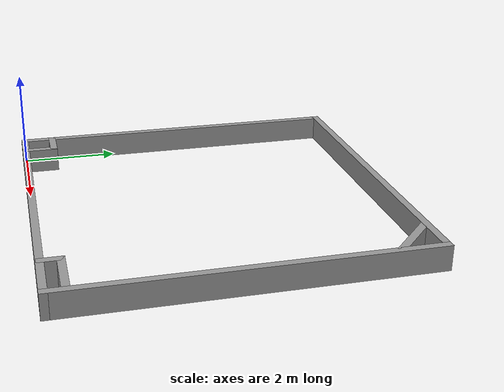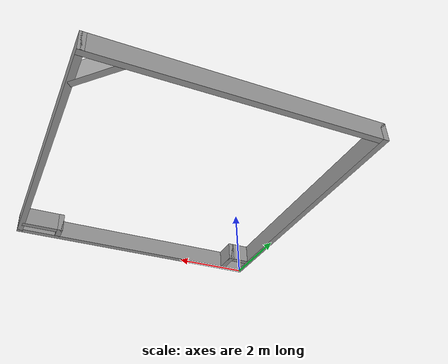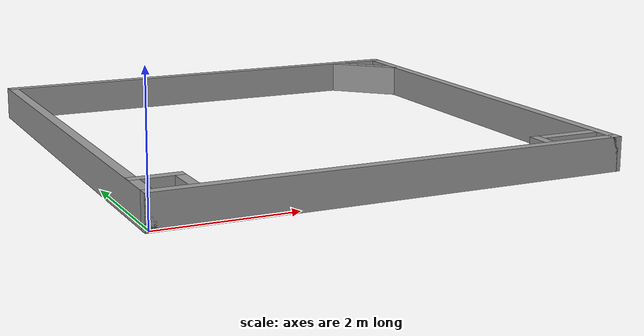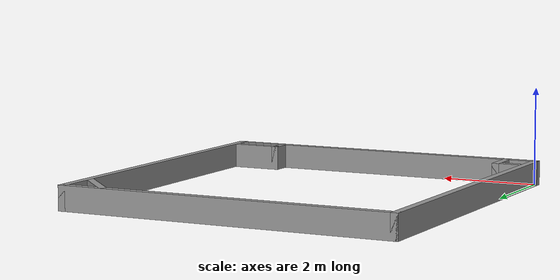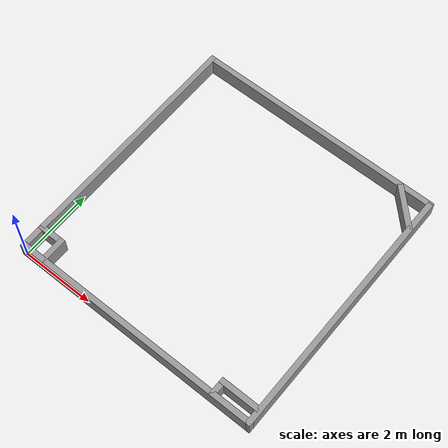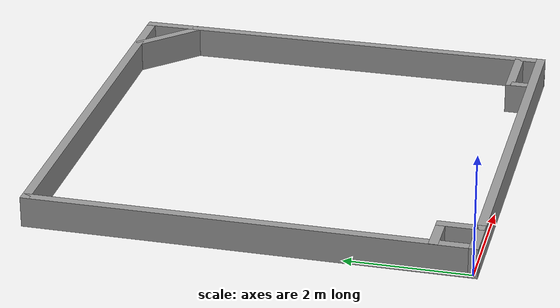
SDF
<?xml version='1.0'?>
<sdf version='1.7'>
  <model name='rectangle'>
    <pose>3.425 3.5 0 0 -0 0</pose>
    <link name='Wall_0'>
      <collision name='Wall_0_Collision'>
        <geometry>
          <box>
            <size>7 0.15 0.5</size>
          </box>
        </geometry>
        <pose>0 0 0.25 0 -0 0</pose>
      </collision>
      <visual name='Wall_0_Visual'>
        <pose>0 0 0.25 0 -0 0</pose>
        <geometry>
          <box>
            <size>7 0.15 0.5</size>
          </box>
        </geometry>
        <material>
          <script>
            <uri>file://media/materials/scripts/gazebo.material</uri>
            <name>Gazebo/Grey</name>
          </script>
          <ambient>1 1 1 1</ambient>
        </material>
        <meta>
          <layer>0</layer>
        </meta>
      </visual>
      <pose>0 -3.5 0 0 -0 0</pose>
    </link>
    <link name='Wall_13'>
      <collision name='Wall_13_Collision'>
        <geometry>
          <box>
            <size>0.5 0.15 0.5</size>
          </box>
        </geometry>
        <pose>0 0 0.25 0 -0 0</pose>
      </collision>
      <visual name='Wall_13_Visual'>
        <pose>0 0 0.25 0 -0 0</pose>
        <geometry>
          <box>
            <size>0.5 0.15 0.5</size>
          </box>
        </geometry>
        <material>
          <script>
            <uri>file://media/materials/scripts/gazebo.material</uri>
            <name>Gazebo/Grey</name>
          </script>
          <ambient>1 1 1 1</ambient>
        </material>
        <meta>
          <layer>0</layer>
        </meta>
      </visual>
      <pose>2.389 -3.312 0 0 -0 1.5708</pose>
    </link>
    <link name='Wall_14'>
      <collision name='Wall_14_Collision'>
        <geometry>
          <box>
            <size>1.1 0.15 0.5</size>
          </box>
        </geometry>
        <pose>0 0 0.25 0 -0 0</pose>
      </collision>
      <visual name='Wall_14_Visual'>
        <pose>0 0 0.25 0 -0 0</pose>
        <geometry>
          <box>
            <size>1.1 0.15 0.5</size>
          </box>
        </geometry>
        <material>
          <script>
            <uri>file://media/materials/scripts/gazebo.material</uri>
            <name>Gazebo/Grey</name>
          </script>
          <ambient>1 1 1 1</ambient>
        </material>
        <meta>
          <layer>0</layer>
        </meta>
      </visual>
      <pose>2.864 -3.137 0 0 -0 0</pose>
    </link>
    <link name='Wall_17'>
      <collision name='Wall_17_Collision'>
        <geometry>
          <box>
            <size>1.25 0.15 0.5</size>
          </box>
        </geometry>
        <pose>0 0 0.25 0 -0 0</pose>
      </collision>
      <visual name='Wall_17_Visual'>
        <pose>0 0 0.25 0 -0 0</pose>
        <geometry>
          <box>
            <size>1.25 0.15 0.5</size>
          </box>
        </geometry>
        <material>
          <script>
            <uri>file://media/materials/scripts/gazebo.material</uri>
            <name>Gazebo/Grey</name>
          </script>
          <ambient>1 1 1 1</ambient>
        </material>
        <meta>
          <layer>0</layer>
        </meta>
      </visual>
      <pose>2.984 3.067 0 0 -0 -0.785398</pose>
    </link>
    <link name='Wall_3'>
      <collision name='Wall_3_Collision'>
        <geometry>
          <box>
            <size>7.15 0.15 0.5</size>
          </box>
        </geometry>
        <pose>0 0 0.25 0 -0 0</pose>
      </collision>
      <visual name='Wall_3_Visual'>
        <pose>0 0 0.25 0 -0 0</pose>
        <geometry>
          <box>
            <size>7.15 0.15 0.5</size>
          </box>
        </geometry>
        <material>
          <script>
            <uri>file://media/materials/scripts/gazebo.material</uri>
            <name>Gazebo/Grey</name>
          </script>
          <ambient>1 1 1 1</ambient>
        </material>
        <meta>
          <layer>0</layer>
        </meta>
      </visual>
      <pose>-3.425 -0 0 0 -0 1.5708</pose>
    </link>
    <link name='Wall_4'>
      <collision name='Wall_4_Collision'>
        <geometry>
          <box>
            <size>7 0.15 0.5</size>
          </box>
        </geometry>
        <pose>0 0 0.25 0 -0 0</pose>
      </collision>
      <visual name='Wall_4_Visual'>
        <pose>0 0 0.25 0 -0 0</pose>
        <geometry>
          <box>
            <size>7 0.15 0.5</size>
          </box>
        </geometry>
        <material>
          <script>
            <uri>file://media/materials/scripts/gazebo.material</uri>
            <name>Gazebo/Grey</name>
          </script>
          <ambient>1 1 1 1</ambient>
        </material>
        <meta>
          <layer>0</layer>
        </meta>
      </visual>
      <pose>0 3.5 0 0 -0 0</pose>
    </link>
    <link name='Wall_5'>
      <collision name='Wall_5_Collision'>
        <geometry>
          <box>
            <size>7.15 0.15 0.5</size>
          </box>
        </geometry>
        <pose>0 0 0.25 0 -0 0</pose>
      </collision>
      <visual name='Wall_5_Visual'>
        <pose>0 0 0.25 0 -0 0</pose>
        <geometry>
          <box>
            <size>7.15 0.15 0.5</size>
          </box>
        </geometry>
        <material>
          <script>
            <uri>file://media/materials/scripts/gazebo.material</uri>
            <name>Gazebo/Grey</name>
          </script>
          <ambient>1 1 1 1</ambient>
        </material>
        <meta>
          <layer>0</layer>
        </meta>
      </visual>
      <pose>3.425 -0 0 0 -0 -1.5708</pose>
    </link>
    <link name='Wall_8'>
      <collision name='Wall_8_Collision'>
        <geometry>
          <box>
            <size>0.75 0.15 0.5</size>
          </box>
        </geometry>
        <pose>0 0 0.25 0 -0 0</pose>
      </collision>
      <visual name='Wall_8_Visual'>
        <pose>0 0 0.25 0 -0 0</pose>
        <geometry>
          <box>
            <size>0.75 0.15 0.5</size>
          </box>
        </geometry>
        <material>
          <script>
            <uri>file://media/materials/scripts/gazebo.material</uri>
            <name>Gazebo/Grey</name>
          </script>
          <ambient>1 1 1 1</ambient>
        </material>
        <meta>
          <layer>0</layer>
        </meta>
      </visual>
      <pose>-3.119 -2.889 0 0 -0 0</pose>
    </link>
    <link name='Wall_9'>
      <collision name='Wall_9_Collision'>
        <geometry>
          <box>
            <size>0.75 0.15 0.5</size>
          </box>
        </geometry>
        <pose>0 0 0.25 0 -0 0</pose>
      </collision>
      <visual name='Wall_9_Visual'>
        <pose>0 0 0.25 0 -0 0</pose>
        <geometry>
          <box>
            <size>0.75 0.15 0.5</size>
          </box>
        </geometry>
        <material>
          <script>
            <uri>file://media/materials/scripts/gazebo.material</uri>
            <name>Gazebo/Grey</name>
          </script>
          <ambient>1 1 1 1</ambient>
        </material>
        <meta>
          <layer>0</layer>
        </meta>
      </visual>
      <pose>-2.819 -3.189 0 0 -0 -1.5708</pose>
    </link>
    <static>1</static>
  </model>
</sdf>
